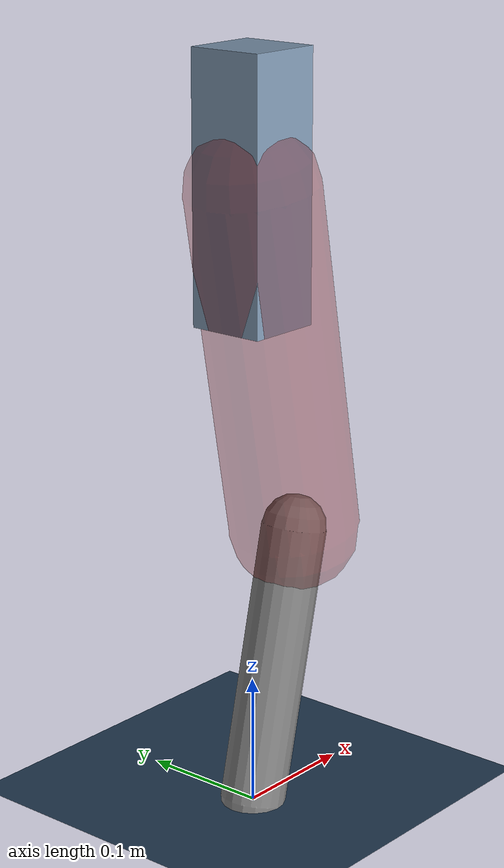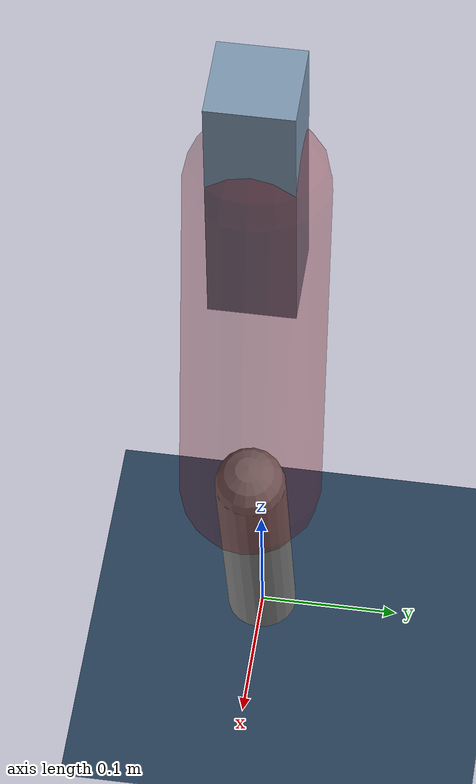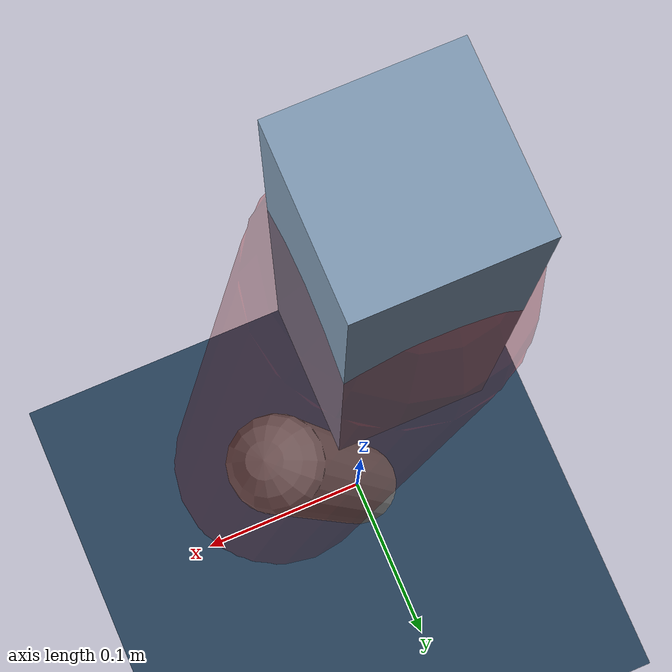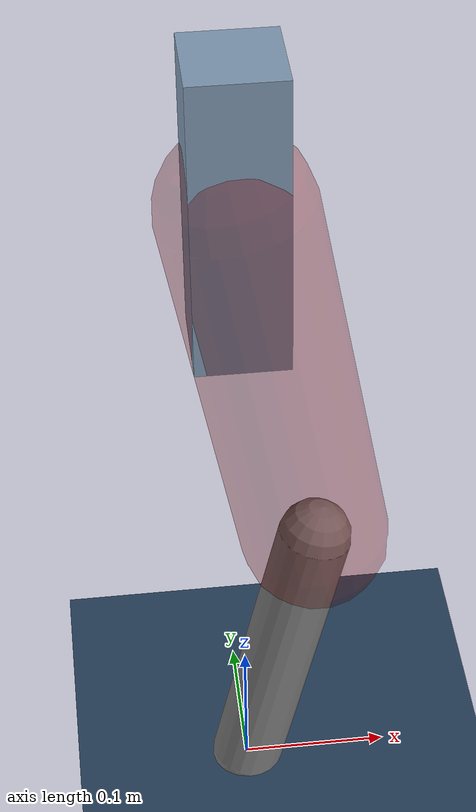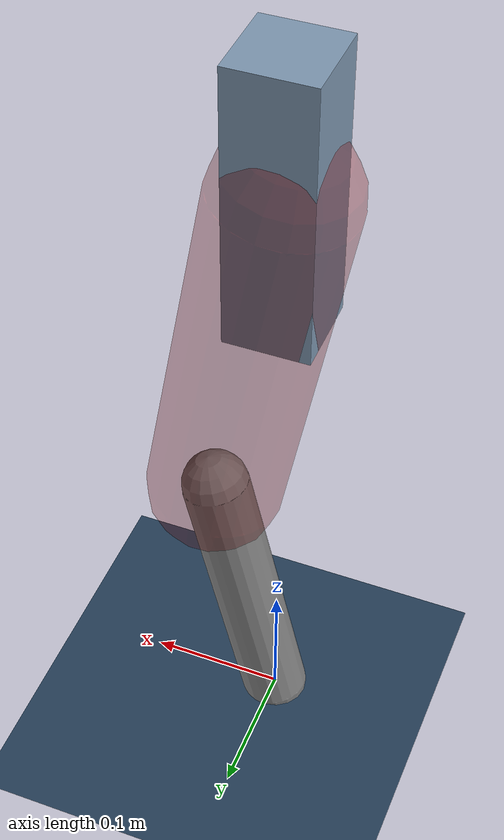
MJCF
<mujoco model="Hopper2D">
	<compiler inertiafromgeom="true" angle="radian" />
	<option timestep="0.001" integrator="implicit" cone="elliptic" solver="Newton" tolerance="1e-10" />

	<default>
		<geom contype="1" conaffinity="1" condim="3" friction="2 0.005 0.0001" solref="0.005 1" />
		<joint limited="true" damping="0.1" />
	</default>

	<asset>
		<texture name="skybox" type="skybox" builtin="gradient" rgb1=".4 .6 .8" rgb2="0 0 0" width="800" height="800" />
		<texture name="grid" type="2d" builtin="checker" rgb1=".1 .2 .3" rgb2=".2 .3 .4" width="300" height="300" mark="edge" markrgb=".2 .3 .4" />
		<material name="ground" texture="grid" texrepeat="1 1" texuniform="true" reflectance="0.1" />
		<material name="leg" rgba="0.5 0.6 0.7 1" />
	</asset>

	<worldbody>

		<geom name="floor" type="plane" size="5 5 0.25" material="ground" />

		<light directional="false" diffuse="0.8 0.8 0.8" specular="0.3 0.3 0.3" pos="0 0 2" dir="0 0 -1" />
		<light mode="targetbodycom" target="base" directional="false" diffuse="0.8 0.8 0.8" specular="0.3 0.3 0.3" pos="0 0 2" dir="0 0 -1" />

		<camera name="fixed" pos="0 -2 1" xyaxes="1 0 0 0 0 1" />
		<camera name="tracking" mode="trackcom" pos="0 -3 1" />

		<body name="root" pos="0 0 0.4769981897634007">
			<joint name="slide_x" type="slide" axis="1 0 0" range="-100 100" />
			<joint name="slide_z" type="slide" axis="0 0 1" range="0 10" />

			<body name="base" pos="0 0 0">
				<geom name="torso" type="box" size="0.03 0.03 0.1" mass="1.657" material="leg" />

				<body name="link1" pos="0 0 0" euler="0 1.3898289346295947 0">
					<joint type="hinge" axis="0 -1 0" pos="0 0 0" name="hinge1" limited="true" range="-3.14 3.14" stiffness="0" damping="0.1" />
					<geom name="thigh" type="capsule" fromto="0 0 0 0.27094744345779487 0 0" size="0.05" rgba="0.5 0 0 0.3" mass="0.9111633529902666" />

					<body name="link2" pos="0.27094744345779487 0 0" euler="0 0.40864224429340923 0">
						<joint type="hinge" axis="0 -1 0" pos="0 0 0" name="hinge2" limited="true" range="-3.14 3.14" stiffness="0" damping="0.1" />
						<geom name="shank" type="capsule" fromto="0 0 0 0.2160507463056058 0 0" size="0.025" mass="0.4143456716750452" />

					</body>
				</body>
			</body>
		</body>
	</worldbody>

	<actuator>
		<motor name="torque1" joint="hinge1" ctrlrange="-30.370336630913798 30.370336630913798" ctrllimited="true" gear="1" />
		<motor name="torque2" joint="hinge2" ctrlrange="-61.262625371784225 61.262625371784225" ctrllimited="true" gear="1" />
	</actuator>
</mujoco>
